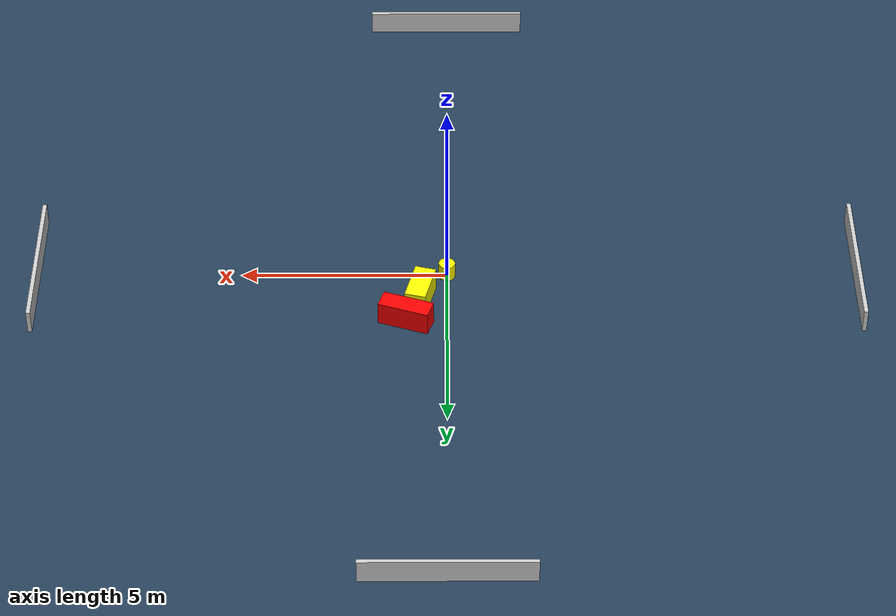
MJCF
<?xml version="1.0" ?>
<mujoco model="generated_environment">
  <option timestep="0.01" integrator="RK4" cone="elliptic"/>
  <default>
    <geom density="1"/>
  </default>
  <asset>
    <texture builtin="gradient" height="3072" name="skybox" rgb1="0.3 0.5 0.7" rgb2="0 0 0" type="skybox" width="512"/>
    <texture builtin="checker" height="300" name="groundplane" rgb1="0.2 0.3 0.4" rgb2="0.1 0.2 0.3" type="2d" width="300"/>
    <material name="groundplane" reflectance="0.2" texrepeat="5 5" texture="groundplane"/>
  </asset>
  <worldbody>
    <light dir="0 0 -1" directional="true" pos="0 0 1.5"/>
    <geom condim="3" friction="0.5 0.005 0.001" material="groundplane" name="floor" pos="0 0 0" size="0 0 0.05" type="plane"/>
    <body name="walls">
      <geom name="wall_1" condim="4" pos="-10.0 0.0 0.3" rgba="0.800000011920929 0.800000011920929 0.800000011920929 1.0" size="0.05 2.0 0.3" type="box"/>
      <geom name="wall_2" condim="4" pos="10.0 0.0 0.3" rgba="0.800000011920929 0.800000011920929 0.800000011920929 1.0" size="0.05 2.0 0.3" type="box"/>
      <geom name="wall_3" condim="4" pos="0.0 -10.0 0.3" rgba="0.800000011920929 0.800000011920929 0.800000011920929 1.0" size="2.0 0.05 0.3" type="box"/>
      <geom name="wall_4" condim="4" pos="0.0 10.0 0.3" rgba="0.800000011920929 0.800000011920929 0.800000011920929 1.0" size="2.0 0.05 0.3" type="box"/>
    </body>
    <body name="robot">
      <joint name="joint_x" type="slide" pos="0 0 0" axis="1 0 0"/>
      <joint name="joint_y" type="slide" pos="0 0 0" axis="0 1 0"/>
      <geom name="robot" type="cylinder" pos="0.0 0.0 0.2" size="0.2 0.2 0.0" mass="5.0" friction="1.0 0.005 0.0001" condim="4" rgba="1.0 1.0 0.0 1.0"/>
    </body>
    <body name="obstacle_1_movable">
      <geom name="obstacle_1_movable" condim="4" pos="0.6421802411233408 0.8885031017388443 0.3" euler="0 0 255.66150259276426" friction="0.0 0.005 0.001" rgba="1.0 1.0 0.0 1.0" size="0.5189981396133097 0.25761121318510904 0.3" type="box" mass="0.1"/>
      <joint type="free"/>
    </body>
    <body name="obstacle_2_static">
      <geom name="obstacle_2_static" condim="4" pos="0.989468200264102 1.681077305231006 0.3" euler="0 0 71.10374781862713" friction="0.0 0.005 0.001" rgba="1.0 0.0 0.0 1.0" size="0.2347942476073377 0.6309792085395745 0.3" type="box"/>
    </body>
  </worldbody>
  <actuator>
    <motor name="actuator_x" joint="joint_x" gear="1" ctrlrange="-1 1"/>
    <motor name="actuator_y" joint="joint_y" gear="1" ctrlrange="-1 1"/>
  </actuator>
</mujoco>
